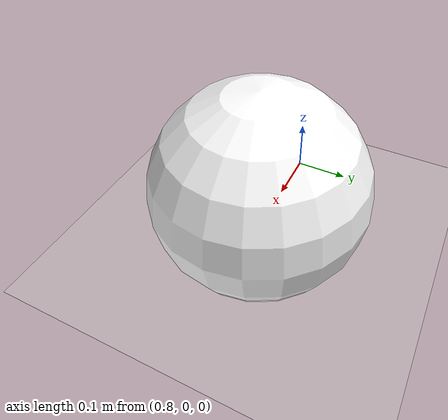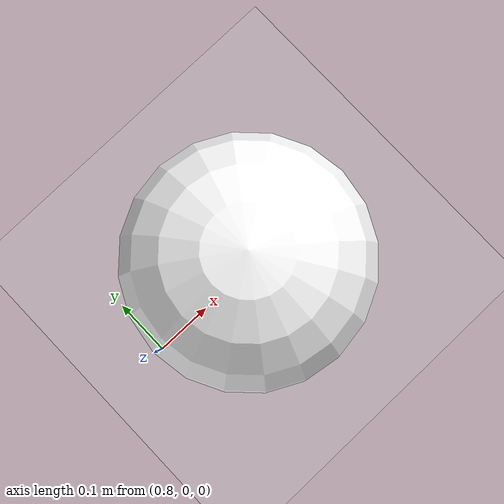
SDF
<?xml version="1.0" ?>
<sdf version="1.8">
    <world name="plugin_test">
        <physics name="1ms" type="ignored">
            <max_step_size>0.001</max_step_size>
            <real_time_factor>1.0</real_time_factor>
        </physics>

        <scene>
            <ambient>1.0 1.0 1.0</ambient>
            <background>0.8 0.8 0.8</background>
            <grid>true</grid>
        </scene>

        <light type="directional" name="sun"    >
            <cast_shadows>true</cast_shadows>
            <pose>0 0 10 0 0 0</pose>
            <diffuse>0.8 0.8 0.8 1</diffuse>
            <specular>0.2 0.2 0.2 1</specular>
            <attenuation>
                <range>1000</range>
                <constant>0.9</constant>
                <linear>0.01</linear>
                <quadratic>0.001</quadratic>
            </attenuation>
            <direction>-0.5 0.1 -0.9</direction>
        </light>

        <model name="ground_plane">
            <static>true</static>
            <link name="link">
                <collision name="collision">
                <geometry>
                    <plane>
                    <normal>0 0 1</normal>
                    </plane>
                </geometry>
                </collision>
                <visual name="visual">
                <geometry>
                    <plane>
                    <normal>0 0 1</normal>
                    <size>100 100</size>
                    </plane>
                </geometry>
                <material>
                    <ambient>0.8 0.8 0.8 1</ambient>
                    <diffuse>0.8 0.8 0.8 1</diffuse>
                    <specular>0.8 0.8 0.8 1</specular>
                </material>
                </visual>
            </link>
        </model>
        <include>
            <uri>/home/testeo/src/puzzlebot_description/models/ball/ball_plugin.sdf</uri>
            <pose>1.0 0 0.1 0 0 0</pose>
        </include>
    </world>
</sdf>

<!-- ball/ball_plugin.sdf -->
<sdf version='1.6'>
    <model name="traffic_ball">
        <static>false</static>
        <link name="link">
            <visual name="visual">
            <geometry>
                <sphere>
                <radius>0.2</radius>
                </sphere>
            </geometry>
            <material>
                <ambient>1 1 1 1</ambient>
            </material>
            </visual>
            <collision name="collision">
            <geometry>
                <sphere>
                <radius>0.2</radius>
                </sphere>
            </geometry>
            </collision>
        </link>
        <plugin name="ColorChangerPlugin" filename="libcolor_changer_plugin.so"/>

    </model>

</sdf>
